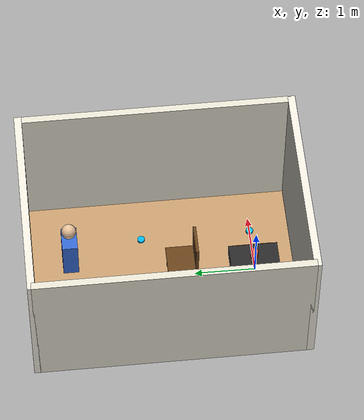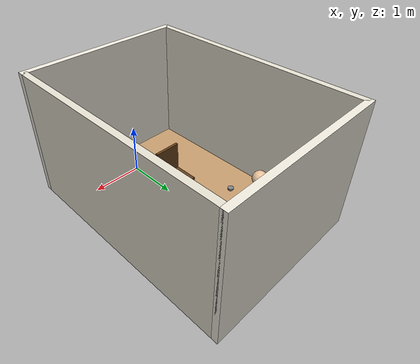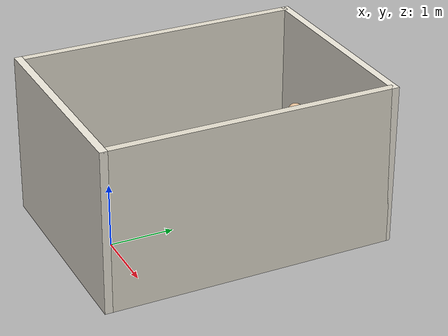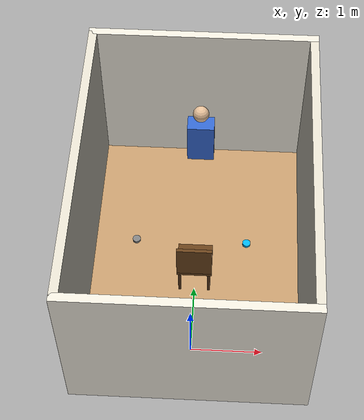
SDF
<?xml version="1.0" ?>
<sdf version="1.9">
  <world name="living_room">

    <!-- ===== GUI camera — top-down view centred on the room, matching RViz ===== -->
    <!--
      Camera directly above room centre (0, 1.829, 9).
      Pitch = pi/2 (1.5708 rad) → looks straight down.
      Yaw = 0 → world +Y (north) points upward in the view, matching RViz default.
    -->
    <gui fullscreen="0">
      <plugin filename="MinimalScene" name="3D View">
        <gz-gui>
          <title>W102 Living Room</title>
          <property type="bool"   key="showTitleBar">false</property>
          <property type="string" key="state">docked</property>
        </gz-gui>
        <engine>ogre</engine>
        <scene>scene</scene>
        <ambient_light>0.5 0.5 0.5</ambient_light>
        <background_color>0.55 0.73 0.87</background_color>
        <!-- Top-down, centred on enlarged room (x=0, y=1.504 = mid of [-0.65,3.658]), 10 m height -->
        <camera_pose>0 1.504 12 0 1.5708 1.5708</camera_pose>
        <camera_clip><near>0.1</near><far>100</far></camera_clip>
      </plugin>

      <plugin filename="GzSceneManager" name="Scene Manager">
        <gz-gui>
          <property key="resizable"     type="bool">false</property>
          <property key="height"        type="double">5</property>
          <property key="width"         type="double">5</property>
          <property key="state"         type="string">floating</property>
          <property key="showTitleBar"  type="bool">false</property>
        </gz-gui>
      </plugin>

      <plugin filename="InteractiveViewControl" name="Interactive view control">
        <gz-gui>
          <property key="resizable"    type="bool">false</property>
          <property key="state"        type="string">floating</property>
          <property key="showTitleBar" type="bool">false</property>
        </gz-gui>
      </plugin>

      <plugin filename="EntityTree" name="Entity tree">
        <gz-gui>
          <property key="state"        type="string">docked_collapsed</property>
          <property key="showTitleBar" type="bool">true</property>
        </gz-gui>
      </plugin>

      <plugin filename="WorldControl" name="World control">
        <gz-gui>
          <title>World control</title>
          <property type="bool"   key="showTitleBar">false</property>
          <property type="string" key="state">floating</property>
          <property type="double" key="width">150</property>
          <property type="double" key="height">50</property>
          <property type="double" key="z">1</property>
        </gz-gui>
        <play_pause>true</play_pause>
        <step>true</step>
        <start_paused>false</start_paused>
      </plugin>

      <plugin filename="WorldStats" name="World stats">
        <gz-gui>
          <title>World stats</title>
          <property type="bool"   key="showTitleBar">false</property>
          <property type="string" key="state">floating</property>
          <property type="double" key="width">280</property>
          <property type="double" key="height">110</property>
          <property type="double" key="z">1</property>
        </gz-gui>
        <sim_time>true</sim_time>
        <real_time>true</real_time>
        <real_time_factor>true</real_time_factor>
        <iterations>true</iterations>
      </plugin>
    </gui>

    <!-- ===== Physics ===== -->
    <physics name="default_physics" type="dart">
      <max_step_size>0.002</max_step_size>
      <real_time_factor>1.0</real_time_factor>
    </physics>

    <!-- ===== Required world plugins ===== -->
    <plugin filename="gz-sim-physics-system"
            name="gz::sim::systems::Physics"/>
    <plugin filename="gz-sim-scene-broadcaster-system"
            name="gz::sim::systems::SceneBroadcaster"/>
    <plugin filename="gz-sim-user-commands-system"
            name="gz::sim::systems::UserCommands"/>

    <!-- ===== Lighting ===== -->
    <light type="directional" name="sun">
      <cast_shadows>true</cast_shadows>
      <pose>0 0 10 0 0 0</pose>
      <diffuse>1.0 0.98 0.9 1</diffuse>
      <specular>0.3 0.3 0.3 1</specular>
      <direction>-0.4 0.2 -0.9</direction>
    </light>

    <light type="point" name="room_lamp">
      <pose>0 1.504 2.2 0 0 0</pose>
      <diffuse>0.8 0.8 0.8 1</diffuse>
      <specular>0.1 0.1 0.1 1</specular>
      <attenuation>
        <range>10</range>
        <constant>0.4</constant>
        <linear>0.05</linear>
        <quadratic>0.01</quadratic>
      </attenuation>
      <cast_shadows>false</cast_shadows>
    </light>

    <!-- ===== Floor ===== -->
    <!-- y centre = (-0.65+3.658)/2 = 1.504; y size = 3.658+0.65 = 4.308 -->
    <model name="floor">
      <static>true</static>
      <pose>0 1.504 0 0 0 0</pose>
      <link name="link">
        <collision name="col">
          <geometry>
            <box><size>3.048 4.308 0.05</size></box>
          </geometry>
          <surface>
            <friction><ode><mu>0.8</mu><mu2>0.8</mu2></ode></friction>
          </surface>
        </collision>
        <visual name="vis">
          <pose>0 0 -0.025 0 0 0</pose>
          <geometry>
            <box><size>3.048 4.308 0.05</size></box>
          </geometry>
          <material>
            <ambient>0.76 0.60 0.42 1</ambient>
            <diffuse>0.76 0.60 0.42 1</diffuse>
            <specular>0.1 0.1 0.1 1</specular>
          </material>
        </visual>
      </link>
    </model>

    <!-- ===== Walls (thickness 0.12 m, height 2.5 m) ===== -->
    <!-- South wall  inner face y = -0.65; centre y = -0.71 (moved south for S(0,0) rotation sweep) -->
    <model name="wall_south">
      <static>true</static>
      <pose>0 -0.71 1.25 0 0 0</pose>
      <link name="link">
        <collision name="col"><geometry><box><size>3.288 0.12 2.5</size></box></geometry></collision>
        <visual name="vis">
          <geometry><box><size>3.288 0.12 2.5</size></box></geometry>
          <material><ambient>0.92 0.90 0.85 1</ambient><diffuse>0.92 0.90 0.85 1</diffuse></material>
        </visual>
      </link>
    </model>

    <!-- North wall  y = 3.718 -->
    <model name="wall_north">
      <static>true</static>
      <pose>0 3.718 1.25 0 0 0</pose>
      <link name="link">
        <collision name="col"><geometry><box><size>3.288 0.12 2.5</size></box></geometry></collision>
        <visual name="vis">
          <geometry><box><size>3.288 0.12 2.5</size></box></geometry>
          <material><ambient>0.92 0.90 0.85 1</ambient><diffuse>0.92 0.90 0.85 1</diffuse></material>
        </visual>
      </link>
    </model>

    <!-- West wall  x = -1.584; y centre = (-0.71+3.718)/2 = 1.504; y size = 4.428 -->
    <model name="wall_west">
      <static>true</static>
      <pose>-1.584 1.504 1.25 0 0 0</pose>
      <link name="link">
        <collision name="col"><geometry><box><size>0.12 4.428 2.5</size></box></geometry></collision>
        <visual name="vis">
          <geometry><box><size>0.12 4.428 2.5</size></box></geometry>
          <material><ambient>0.88 0.86 0.80 1</ambient><diffuse>0.88 0.86 0.80 1</diffuse></material>
        </visual>
      </link>
    </model>

    <!-- East wall  x = 1.584; y centre = 1.504; y size = 4.428 -->
    <model name="wall_east">
      <static>true</static>
      <pose>1.584 1.504 1.25 0 0 0</pose>
      <link name="link">
        <collision name="col"><geometry><box><size>0.12 4.428 2.5</size></box></geometry></collision>
        <visual name="vis">
          <geometry><box><size>0.12 4.428 2.5</size></box></geometry>
          <material><ambient>0.88 0.86 0.80 1</ambient><diffuse>0.88 0.86 0.80 1</diffuse></material>
        </visual>
      </link>
    </model>

    <!-- ===== Chair obstacle  (0, 1.219 m) ===== -->
    <!-- Seat -->
    <model name="chair">
      <static>true</static>
      <pose>0 1.219 0 0 0 0</pose>
      <link name="seat">
        <pose>0 0 0.45 0 0 0</pose>
        <collision name="col"><geometry><box><size>0.5 0.5 0.05</size></box></geometry></collision>
        <visual name="vis">
          <geometry><box><size>0.5 0.5 0.05</size></box></geometry>
          <material><ambient>0.40 0.25 0.10 1</ambient><diffuse>0.40 0.25 0.10 1</diffuse></material>
        </visual>
      </link>
      <!-- Backrest -->
      <link name="back">
        <pose>0 -0.225 0.75 0 0 0</pose>
        <collision name="col"><geometry><box><size>0.5 0.05 0.55</size></box></geometry></collision>
        <visual name="vis">
          <geometry><box><size>0.5 0.05 0.55</size></box></geometry>
          <material><ambient>0.40 0.25 0.10 1</ambient><diffuse>0.40 0.25 0.10 1</diffuse></material>
        </visual>
      </link>
      <!-- Four legs -->
      <link name="leg_fl">
        <pose> 0.21  0.21 0.225 0 0 0</pose>
        <collision name="col"><geometry><box><size>0.04 0.04 0.45</size></box></geometry></collision>
        <visual name="vis">
          <geometry><box><size>0.04 0.04 0.45</size></box></geometry>
          <material><ambient>0.30 0.18 0.08 1</ambient><diffuse>0.30 0.18 0.08 1</diffuse></material>
        </visual>
      </link>
      <link name="leg_fr">
        <pose>-0.21  0.21 0.225 0 0 0</pose>
        <collision name="col"><geometry><box><size>0.04 0.04 0.45</size></box></geometry></collision>
        <visual name="vis">
          <geometry><box><size>0.04 0.04 0.45</size></box></geometry>
          <material><ambient>0.30 0.18 0.08 1</ambient><diffuse>0.30 0.18 0.08 1</diffuse></material>
        </visual>
      </link>
      <link name="leg_bl">
        <pose> 0.21 -0.21 0.225 0 0 0</pose>
        <collision name="col"><geometry><box><size>0.04 0.04 0.45</size></box></geometry></collision>
        <visual name="vis">
          <geometry><box><size>0.04 0.04 0.45</size></box></geometry>
          <material><ambient>0.30 0.18 0.08 1</ambient><diffuse>0.30 0.18 0.08 1</diffuse></material>
        </visual>
      </link>
      <link name="leg_br">
        <pose>-0.21 -0.21 0.225 0 0 0</pose>
        <collision name="col"><geometry><box><size>0.04 0.04 0.45</size></box></geometry></collision>
        <visual name="vis">
          <geometry><box><size>0.04 0.04 0.45</size></box></geometry>
          <material><ambient>0.30 0.18 0.08 1</ambient><diffuse>0.30 0.18 0.08 1</diffuse></material>
        </visual>
      </link>
    </model>

    <!-- ===== John marker  (0, 3.048 m) ===== -->
    <model name="john_marker">
      <static>true</static>
      <pose>0 3.048 0 0 0 0</pose>
      <link name="body">
        <!-- Torso -->
        <pose>0 0 1.0 0 0 0</pose>
        <collision name="col"><geometry><box><size>0.4 0.25 0.7</size></box></geometry></collision>
        <visual name="torso_vis">
          <geometry><box><size>0.4 0.25 0.7</size></box></geometry>
          <material><ambient>0.2 0.4 0.8 1</ambient><diffuse>0.2 0.4 0.8 1</diffuse></material>
        </visual>
      </link>
      <link name="head">
        <pose>0 0 1.55 0 0 0</pose>
        <collision name="col"><geometry><sphere><radius>0.12</radius></sphere></geometry></collision>
        <visual name="head_vis">
          <geometry><sphere><radius>0.12</radius></sphere></geometry>
          <material><ambient>0.9 0.75 0.6 1</ambient><diffuse>0.9 0.75 0.6 1</diffuse></material>
        </visual>
      </link>
    </model>

    <!-- ===== Graph waypoint markers (visual only) ===== -->
    <model name="wp_R1">
      <static>true</static>
      <pose>0.75 0 0.02 0 0 0</pose>
      <link name="link">
        <visual name="vis">
          <geometry><cylinder><radius>0.06</radius><length>0.04</length></cylinder></geometry>
          <material><ambient>0 0.7 1 1</ambient><diffuse>0 0.7 1 1</diffuse></material>
        </visual>
      </link>
    </model>

    <model name="wp_R2">
      <static>true</static>
      <pose>0.75 1.8288 0.02 0 0 0</pose>
      <link name="link">
        <visual name="vis">
          <geometry><cylinder><radius>0.06</radius><length>0.04</length></cylinder></geometry>
          <material><ambient>0 0.7 1 1</ambient><diffuse>0 0.7 1 1</diffuse></material>
        </visual>
      </link>
    </model>

    <model name="wp_L1">
      <static>true</static>
      <pose>-0.9144 0 0.02 0 0 0</pose>
      <link name="link">
        <visual name="vis">
          <geometry><cylinder><radius>0.06</radius><length>0.04</length></cylinder></geometry>
          <material><ambient>0.5 0.5 0.5 1</ambient><diffuse>0.5 0.5 0.5 1</diffuse></material>
        </visual>
      </link>
    </model>

    <model name="wp_L2">
      <static>true</static>
      <pose>-0.9144 1.8288 0.02 0 0 0</pose>
      <link name="link">
        <visual name="vis">
          <geometry><cylinder><radius>0.06</radius><length>0.04</length></cylinder></geometry>
          <material><ambient>0.5 0.5 0.5 1</ambient><diffuse>0.5 0.5 0.5 1</diffuse></material>
        </visual>
      </link>
    </model>

    <!-- ===== W102 Robot ===== -->
    <model name="w102">
      <pose>0 0 0.12 0 0 0</pose>

      <!-- Base link -->
      <link name="base_link">
        <inertial>
          <mass>15.0</mass>
          <inertia>
            <ixx>0.35</ixx><ixy>0</ixy><ixz>0</ixz>
            <iyy>0.50</iyy><iyz>0</iyz>
            <izz>0.65</izz>
          </inertia>
        </inertial>
        <collision name="base_col">
          <geometry><box><size>0.686 0.813 0.20</size></box></geometry>
        </collision>
        <visual name="base_vis">
          <geometry><box><size>0.686 0.813 0.20</size></box></geometry>
          <material>
            <ambient>0.15 0.15 0.15 1</ambient>
            <diffuse>0.15 0.15 0.15 1</diffuse>
            <specular>0.4 0.4 0.4 1</specular>
          </material>
        </visual>
        <!-- Sensor tower -->
        <visual name="tower_vis">
          <pose>0.1 0 0.18 0 0 0</pose>
          <geometry><cylinder><radius>0.06</radius><length>0.16</length></cylinder></geometry>
          <material><ambient>0.8 0.2 0.0 1</ambient><diffuse>0.8 0.2 0.0 1</diffuse></material>
        </visual>
        <!-- Front bumper stripe -->
        <visual name="bumper_vis">
          <pose>0.41 0 -0.05 0 0 0</pose>
          <geometry><box><size>0.02 0.686 0.08</size></box></geometry>
          <material><ambient>1.0 0.5 0.0 1</ambient><diffuse>1.0 0.5 0.0 1</diffuse></material>
        </visual>
      </link>

      <!-- Left drive wheel -->
      <link name="left_wheel">
        <pose>0 0.27 -0.02 1.5708 0 0</pose>
        <inertial>
          <mass>1.5</mass>
          <inertia><ixx>0.0045</ixx><ixy>0</ixy><ixz>0</ixz><iyy>0.0045</iyy><iyz>0</iyz><izz>0.0075</izz></inertia>
        </inertial>
        <collision name="col">
          <geometry><cylinder><radius>0.10</radius><length>0.05</length></cylinder></geometry>
          <surface><friction><ode><mu>1.0</mu><mu2>0.5</mu2></ode></friction></surface>
        </collision>
        <visual name="vis">
          <geometry><cylinder><radius>0.10</radius><length>0.05</length></cylinder></geometry>
          <material><ambient>0.1 0.1 0.1 1</ambient><diffuse>0.1 0.1 0.1 1</diffuse></material>
        </visual>
      </link>

      <joint name="left_wheel_joint" type="revolute">
        <parent>base_link</parent>
        <child>left_wheel</child>
        <axis><xyz>0 1 0</xyz><limit><lower>-1e16</lower><upper>1e16</upper></limit></axis>
      </joint>

      <!-- Right drive wheel -->
      <link name="right_wheel">
        <pose>0 -0.27 -0.02 1.5708 0 0</pose>
        <inertial>
          <mass>1.5</mass>
          <inertia><ixx>0.0045</ixx><ixy>0</ixy><ixz>0</ixz><iyy>0.0045</iyy><iyz>0</iyz><izz>0.0075</izz></inertia>
        </inertial>
        <collision name="col">
          <geometry><cylinder><radius>0.10</radius><length>0.05</length></cylinder></geometry>
          <surface><friction><ode><mu>1.0</mu><mu2>0.5</mu2></ode></friction></surface>
        </collision>
        <visual name="vis">
          <geometry><cylinder><radius>0.10</radius><length>0.05</length></cylinder></geometry>
          <material><ambient>0.1 0.1 0.1 1</ambient><diffuse>0.1 0.1 0.1 1</diffuse></material>
        </visual>
      </link>

      <joint name="right_wheel_joint" type="revolute">
        <parent>base_link</parent>
        <child>right_wheel</child>
        <axis><xyz>0 1 0</xyz><limit><lower>-1e16</lower><upper>1e16</upper></limit></axis>
      </joint>

      <!-- Front caster wheel -->
      <link name="caster_wheel">
        <pose>0.36 0 -0.07 0 0 0</pose>
        <inertial>
          <mass>0.3</mass>
          <inertia><ixx>0.0003</ixx><ixy>0</ixy><ixz>0</ixz><iyy>0.0003</iyy><iyz>0</iyz><izz>0.0003</izz></inertia>
        </inertial>
        <collision name="col">
          <geometry><sphere><radius>0.05</radius></sphere></geometry>
          <surface><friction><ode><mu>0.0</mu><mu2>0.0</mu2></ode></friction></surface>
        </collision>
        <visual name="vis">
          <geometry><sphere><radius>0.05</radius></sphere></geometry>
          <material><ambient>0.3 0.3 0.3 1</ambient><diffuse>0.3 0.3 0.3 1</diffuse></material>
        </visual>
      </link>

      <joint name="caster_joint" type="ball">
        <parent>base_link</parent>
        <child>caster_wheel</child>
      </joint>

      <!-- Rear caster wheel -->
      <link name="caster_rear">
        <pose>-0.36 0 -0.07 0 0 0</pose>
        <inertial>
          <mass>0.3</mass>
          <inertia><ixx>0.0003</ixx><ixy>0</ixy><ixz>0</ixz><iyy>0.0003</iyy><iyz>0</iyz><izz>0.0003</izz></inertia>
        </inertial>
        <collision name="col">
          <geometry><sphere><radius>0.05</radius></sphere></geometry>
          <surface><friction><ode><mu>0.0</mu><mu2>0.0</mu2></ode></friction></surface>
        </collision>
        <visual name="vis">
          <geometry><sphere><radius>0.05</radius></sphere></geometry>
          <material><ambient>0.3 0.3 0.3 1</ambient><diffuse>0.3 0.3 0.3 1</diffuse></material>
        </visual>
      </link>

      <joint name="caster_rear_joint" type="ball">
        <parent>base_link</parent>
        <child>caster_rear</child>
      </joint>

      <!-- Differential drive plugin -->
      <plugin filename="gz-sim-diff-drive-system"
              name="gz::sim::systems::DiffDrive">
        <left_joint>left_wheel_joint</left_joint>
        <right_joint>right_wheel_joint</right_joint>
        <wheel_separation>0.54</wheel_separation>
        <wheel_radius>0.10</wheel_radius>
        <odom_publish_frequency>50</odom_publish_frequency>
        <topic>/cmd_vel</topic>
        <odom_topic>/odom</odom_topic>
        <tf_topic>/tf</tf_topic>
        <frame_id>odom</frame_id>
        <child_frame_id>base_footprint</child_frame_id>
      </plugin>

      <!-- Joint state publisher -->
      <plugin filename="gz-sim-joint-state-publisher-system"
              name="gz::sim::systems::JointStatePublisher">
        <topic>/joint_states</topic>
      </plugin>

    </model>

  </world>
</sdf>
